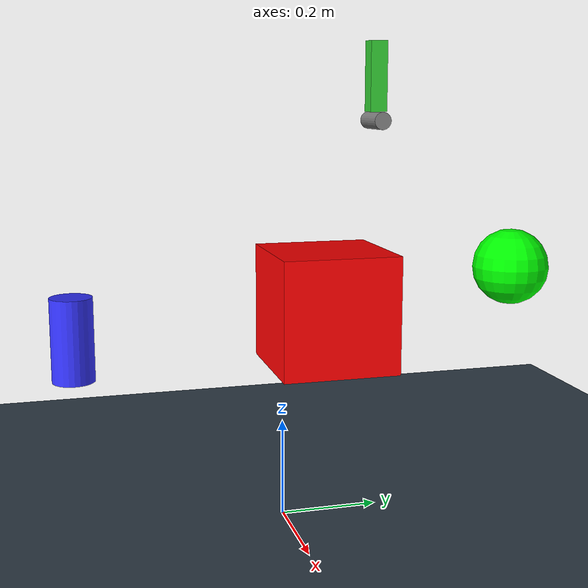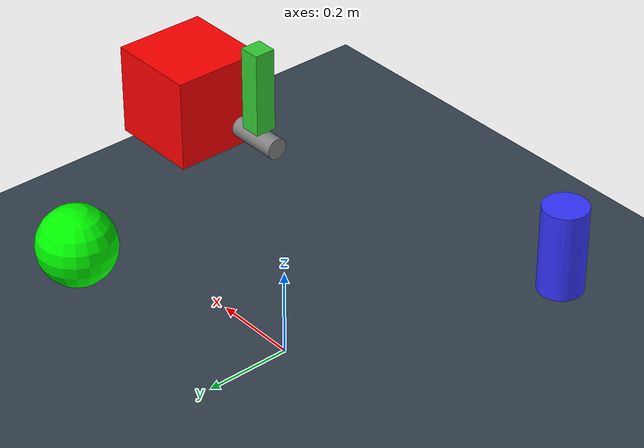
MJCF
<mujoco model="scene_manager_test">
  <compiler autolimits="true"/>

  <option impratio="10" integrator="implicitfast" timestep="0.002"/>

  <statistic center="0 0 0.5" extent="1.5" meansize="0.1"/>

  <visual>
    <headlight ambient="0.8 0.8 0.8" diffuse="0.2 0.2 0.2"/>
    <map znear="0.01"/>
  </visual>

  <asset>
    <texture name="floor_tex" type="2d" builtin="checker" rgb1="0.15 0.2 0.25" rgb2="0.25 0.3 0.35" width="200" height="200"/>
    <material name="floor_mat" texture="floor_tex" texrepeat="8 8"/>
  </asset>

  <extension>
    <plugin plugin="MujocoRosUtils::ClockPublisher"/>
    <plugin plugin="MujocoRosUtils::SceneManager">
      <instance name="scene_manager_inst">
        <config key="node_name" value="scene_manager"/>
        <config key="namespace" value=""/>
      </instance>
    </plugin>
  </extension>

  <worldbody>
    <!-- Clock passive plugin (worldbody instance) -->
    <plugin plugin="MujocoRosUtils::ClockPublisher">
      <config key="topic_name" value="/clock"/>
      <config key="publish_rate" value="100"/>
      <config key="use_sim_time" value="true"/>
    </plugin>

    <light pos="0 0 2" dir="0 0 -1" diffuse="0.9 0.9 0.9"/>

    <!-- Ground plane -->
    <geom name="floor" type="plane" material="floor_mat" size="5 5 0.01" pos="0 0 -0.01"/>

    <!-- Static (welded) body -->
    <body name="static_body" pos="0.3 0.0 0.5">
      <geom name="static_box_geom" type="box" size="0.1 0.1 0.1" mass="1.0" rgba="1.0 0.0 0.0 1.0"/>
    </body>

    <!-- Dynamic (freejoint) body -->
    <body name="dynamic_body" pos="0.0 0.5 0.5">
      <freejoint/>
      <geom name="dynamic_sphere_geom" type="sphere" size="0.08" mass="0.5" rgba="0.0 1.0 0.0 1.0"/>
    </body>

    <!-- Extra body for relative pose test -->
    <body name="ref_body" pos="-0.4 -0.4 0.3">
      <geom name="ref_geom" type="cylinder" size="0.05 0.1" mass="0.5" rgba="0.2 0.2 1.0 1.0"/>
    </body>

    <!-- Pendulum with hinge joint for SetJointPositions / GetJointState tests -->
    <body name="pendulum_base" pos="-0.3 0.3 0.8">
      <geom name="pendulum_base_geom" type="cylinder" size="0.02 0.05" rgba="0.5 0.5 0.5 1.0" euler="0 90 0"/>
      <body name="pendulum_arm">
        <geom name="pendulum_geom" type="box" size="0.02 0.02 0.08" pos="0 0 0.1" mass="0.2" rgba="0.2 0.8 0.2 1.0"/>
        <joint name="pendulum_joint" type="hinge" axis="1 0 0" />
      </body>
    </body>

  </worldbody>

  <contact>
    <exclude body1="pendulum_base" body2="pendulum_arm"/>
  </contact>

  <!-- Named weld constraint for SetEqualityActive tests -->
  <equality>
    <weld name="test_weld" body1="static_body" body2="ref_body" active="false" relpose="0 0 0 1 0 0 0"/>
  </equality>

</mujoco>
